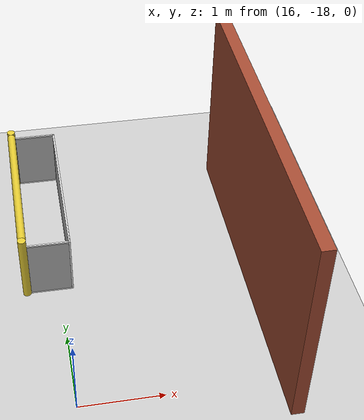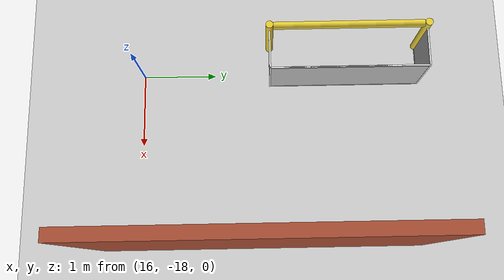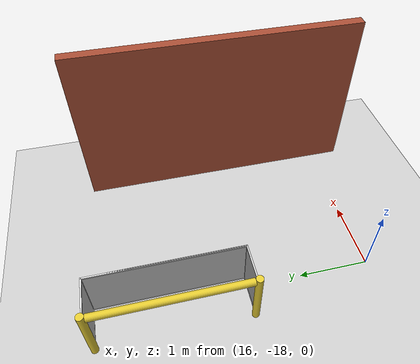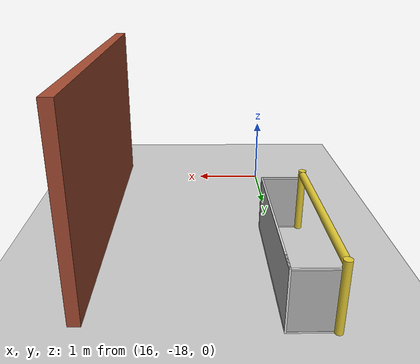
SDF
<sdf version="1.6">
 <world name="default">
  <model name="ground_plane">
   <static>1</static>
   <link name="link">
    <collision name="collision">
     <geometry><plane><normal>0 0 1</normal><size>100 100</size></plane></geometry>
     <surface><friction><ode><mu>100</mu><mu2>50</mu2></ode></friction></surface>
    </collision>
    <visual name="visual">
     <cast_shadows>0</cast_shadows>
     <geometry><plane><normal>0 0 1</normal><size>100 100</size></plane></geometry>
     <material>
      <script><uri>file://media/materials/scripts/gazebo.material</uri><name>Gazebo/Grey</name></script>
     </material>
    </visual>
   </link>
  </model>
  <model name="spiral_office">
   <link name="Wall_19">
    <collision name="Wall_19_Collision">
     <geometry><box><size>4.25 0.15 2.5</size></box></geometry>
     <pose>0 0 1.25 0 -0 0</pose>
    </collision>
    <visual name="Wall_19_Visual">
     <pose>0 0 1.25 0 -0 0</pose>
     <geometry><box><size>4.25 0.15 2.5</size></box></geometry>
     <material>
      <script><uri>file://media/materials/scripts/gazebo.material</uri><name>Gazebo/Bricks</name></script>
      <ambient>1 1 1 1</ambient>
     </material>
     <meta><layer>0</layer></meta>
    </visual>
    <pose>18.3647 -16.3504 0 0 0 -1.5708</pose>
   </link>
   <static>1</static>
  </model>
  <model name="robocup_3d_goal">
   <static>1</static>
   <link name="left_post">
    <pose>0 1.05 0.45 0 -0 0</pose>
    <collision name="collision">
     <geometry><cylinder><radius>0.05</radius><length>0.9</length></cylinder></geometry>
    </collision>
    <visual name="visual">
     <geometry><cylinder><radius>0.05</radius><length>0.9</length></cylinder></geometry>
     <material>
      <script><uri>file://media/materials/scripts/gazebo.material</uri><name>Gazebo/ZincYellow</name></script>
     </material>
    </visual>
   </link>
   <link name="left_support_horiz_lower">
    <pose>0.3 1.05 0.01 0 -0 0</pose>
    <collision name="collision"><geometry><box><size>0.5 0.02 0.02</size></box></geometry></collision>
    <visual name="visual">
     <geometry><box><size>0.5 0.02 0.02</size></box></geometry>
     <material>
      <script><uri>file://media/materials/scripts/gazebo.material</uri><name>Gazebo/White</name></script>
     </material>
    </visual>
   </link>
   <link name="left_support_horiz_upper">
    <pose>0.3 1.05 0.79 0 -0 0</pose>
    <collision name="collision"><geometry><box><size>0.5 0.02 0.02</size></box></geometry></collision>
    <visual name="visual">
     <geometry><box><size>0.5 0.02 0.02</size></box></geometry>
     <material>
      <script><uri>file://media/materials/scripts/gazebo.material</uri><name>Gazebo/White</name></script>
     </material>
    </visual>
   </link>
   <link name="left_support_vertical">
    <pose>0.56 1.05 0.4 3.14159 1.57079 3.14159</pose>
    <collision name="collision"><geometry><box><size>0.8 0.02 0.02</size></box></geometry></collision>
    <visual name="visual">
     <geometry><box><size>0.8 0.02 0.02</size></box></geometry>
     <material>
      <script><uri>file://media/materials/scripts/gazebo.material</uri><name>Gazebo/White</name></script>
     </material>
    </visual>
   </link>
   <link name="right_support_horiz_lower">
    <pose>0.3 -1.05 0.01 0 -0 0</pose>
    <collision name="collision"><geometry><box><size>0.5 0.02 0.02</size></box></geometry></collision>
    <visual name="visual">
     <geometry><box><size>0.5 0.02 0.02</size></box></geometry>
     <material>
      <script><uri>file://media/materials/scripts/gazebo.material</uri><name>Gazebo/White</name></script>
     </material>
    </visual>
   </link>
   <link name="right_support_horiz_upper">
    <pose>0.3 -1.05 0.79 0 -0 0</pose>
    <collision name="collision"><geometry><box><size>0.5 0.02 0.02</size></box></geometry></collision>
    <visual name="visual">
     <geometry><box><size>0.5 0.02 0.02</size></box></geometry>
     <material>
      <script><uri>file://media/materials/scripts/gazebo.material</uri><name>Gazebo/White</name></script>
     </material>
    </visual>
   </link>
   <link name="right_support_vertical">
    <pose>0.56 -1.05 0.4 3.14159 1.57079 3.14159</pose>
    <collision name="collision"><geometry><box><size>0.8 0.02 0.02</size></box></geometry></collision>
    <visual name="visual">
     <geometry><box><size>0.8 0.02 0.02</size></box></geometry>
     <material>
      <script><uri>file://media/materials/scripts/gazebo.material</uri><name>Gazebo/White</name></script>
     </material>
    </visual>
   </link>
   <link name="center_support_horiz_lower">
    <pose>0.56 0 0.01 3.14159 1.57079 3.14159</pose>
    <collision name="collision"><geometry><box><size>0.02 2.08 0.02</size></box></geometry></collision>
    <visual name="visual">
     <geometry><box><size>0.02 2.08 0.02</size></box></geometry>
     <material>
      <script><uri>file://media/materials/scripts/gazebo.material</uri><name>Gazebo/White</name></script>
     </material>
    </visual>
   </link>
   <link name="center_support_horiz_upper">
    <pose>0.56 0 0.79 3.14159 1.57079 3.14159</pose>
    <collision name="collision"><geometry><box><size>0.02 2.08 0.02</size></box></geometry></collision>
    <visual name="visual">
     <geometry><box><size>0.02 2.08 0.02</size></box></geometry>
     <material>
      <script><uri>file://media/materials/scripts/gazebo.material</uri><name>Gazebo/White</name></script>
     </material>
    </visual>
   </link>
   <link name="right_post">
    <pose>0 -1.05 0.45 0 -0 0</pose>
    <collision name="collision">
     <geometry><cylinder><radius>0.05</radius><length>0.9</length></cylinder></geometry>
    </collision>
    <visual name="visual">
     <geometry><cylinder><radius>0.05</radius><length>0.9</length></cylinder></geometry>
     <material>
      <script><uri>file://media/materials/scripts/gazebo.material</uri><name>Gazebo/ZincYellow</name></script>
     </material>
    </visual>
   </link>
   <link name="crossbar">
    <pose>0 0 0.85 1.57 1.57 0</pose>
    <collision name="collision">
     <geometry><cylinder><radius>0.05</radius><length>2</length></cylinder></geometry>
    </collision>
    <visual name="visual">
     <geometry><cylinder><radius>0.05</radius><length>2</length></cylinder></geometry>
     <material>
      <script><uri>file://media/materials/scripts/gazebo.material</uri><name>Gazebo/ZincYellow</name></script>
     </material>
    </visual>
   </link>
   <link name="center_net">
    <pose>0.56 0 0.4 0 -0 0</pose>
    <collision name="collision"><geometry><box><size>0.01 2.1 0.8</size></box></geometry></collision>
    <visual name="visual">
     <geometry><box><size>0.01 2.1 0.8</size></box></geometry>
     <material>
      <script>
       <uri>model://robocup09_spl_field/materials/scripts/</uri>
       <uri>model://robocup09_spl_field/materials/textures/</uri>
       <name>RoboCup/Net</name>
      </script>
     </material>
    </visual>
   </link>
   <link name="left_net">
    <pose>0.3 1.05 0.4 0 -0 0</pose>
    <collision name="collision"><geometry><box><size>0.5 0.01 0.76</size></box></geometry></collision>
    <visual name="visual">
     <geometry><box><size>0.5 0.01 0.76</size></box></geometry>
     <material>
      <script>
       <uri>model://robocup09_spl_field/materials/scripts/</uri>
       <uri>model://robocup09_spl_field/materials/textures/</uri>
       <name>RoboCup/Net</name>
      </script>
     </material>
    </visual>
   </link>
   <link name="right_net">
    <pose>0.3 -1.05 0.4 0 -0 0</pose>
    <collision name="collision"><geometry><box><size>0.5 0.01 0.76</size></box></geometry></collision>
    <visual name="visual">
     <geometry><box><size>0.5 0.01 0.76</size></box></geometry>
     <material>
      <script>
       <uri>model://robocup09_spl_field/materials/scripts/</uri>
       <uri>model://robocup09_spl_field/materials/textures/</uri>
       <name>RoboCup/Net</name>
      </script>
     </material>
    </visual>
   </link>
   <pose>15.5892 -15.1714 0.001658 0 -0 0</pose>
  </model>
 </world>
</sdf>
